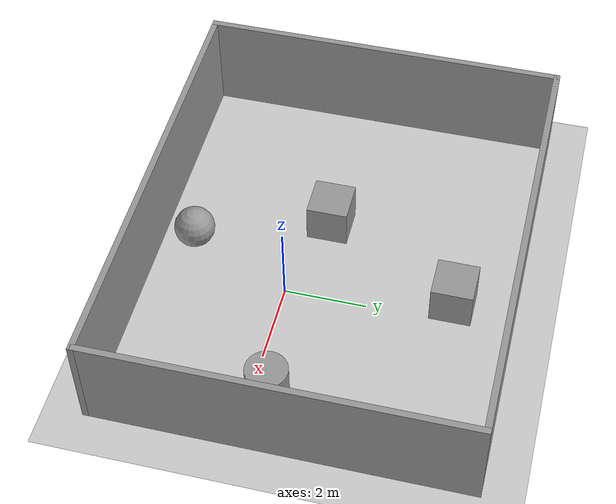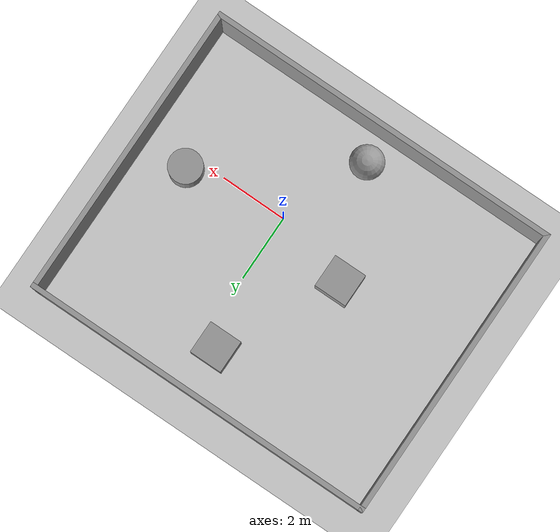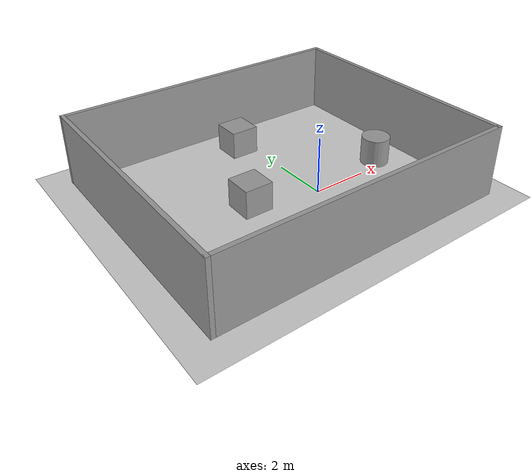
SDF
<sdf version="1.7">
 <world name="default">
  <light name="sun" type="directional">
   <pose>0 0 10 0 -0 0</pose>
   <diffuse>0.8 0.8 0.8 1</diffuse>
   <specular>0.2 0.2 0.2 1</specular>
   <attenuation>
    <range>1000</range>
    <constant>0.9</constant>
    <linear>0.01</linear>
    <quadratic>0.001</quadratic>
   </attenuation>
   <direction>-0.5 0.1 -0.9</direction>
   <spot><inner_angle>0</inner_angle><outer_angle>0</outer_angle><falloff>0</falloff></spot>
  </light>
  <model name="ground_plane">
   <static>1</static>
   <link name="link">
    <collision name="collision">
     <geometry><plane><normal>0 0 1</normal><size>100 100</size></plane></geometry>
     <surface>
      <contact><collide_bitmask>65535</collide_bitmask></contact>
      <friction><ode><mu>100</mu><mu2>50</mu2></ode></friction>
     </surface>
    </collision>
    <visual name="visual">
     <cast_shadows>0</cast_shadows>
     <geometry><plane><normal>0 0 1</normal><size>100 100</size></plane></geometry>
     <material>
      <script><uri>file://media/materials/scripts/gazebo.material</uri><name>Gazebo/Grey</name></script>
     </material>
    </visual>
   </link>
  </model>
  <gravity>0 0 -9.8</gravity>
  <magnetic_field>6e-06 2.3e-05 -4.2e-05</magnetic_field>
  <atmosphere type="adiabatic"/>
  <physics type="ode">
   <max_step_size>0.001</max_step_size>
   <real_time_factor>1</real_time_factor>
   <real_time_update_rate>1000</real_time_update_rate>
  </physics>
  <scene><ambient>0.4 0.4 0.4 1</ambient><background>0.7 0.7 0.7 1</background><shadows>1</shadows></scene>
  <spherical_coordinates>
   <surface_model>EARTH_WGS84</surface_model>
   <latitude_deg>0</latitude_deg>
   <longitude_deg>0</longitude_deg>
   <elevation>0</elevation>
   <heading_deg>0</heading_deg>
  </spherical_coordinates>
  <model name="unit_box">
   <pose>-2.28065 0.601965 0.499995 -1e-05 -0 -0</pose>
   <link name="link">
    <inertial>
     <mass>1</mass>
     <inertia>
      <ixx>0.166667</ixx>
      <ixy>0</ixy>
      <ixz>0</ixz>
      <iyy>0.166667</iyy>
      <iyz>0</iyz>
      <izz>0.166667</izz>
     </inertia>
    </inertial>
    <collision name="collision"><geometry><box><size>1 1 1</size></box></geometry></collision>
    <visual name="visual">
     <geometry><box><size>1 1 1</size></box></geometry>
     <material>
      <script><name>Gazebo/Grey</name><uri>file://media/materials/scripts/gazebo.material</uri></script>
     </material>
    </visual>
   </link>
  </model>
  <model name="unit_box_0">
   <pose>-0.491582 4.00562 0.499995 0 -1e-05 0</pose>
   <link name="link">
    <inertial>
     <mass>1</mass>
     <inertia>
      <ixx>0.166667</ixx>
      <ixy>0</ixy>
      <ixz>0</ixz>
      <iyy>0.166667</iyy>
      <iyz>0</iyz>
      <izz>0.166667</izz>
     </inertia>
    </inertial>
    <collision name="collision"><geometry><box><size>1 1 1</size></box></geometry></collision>
    <visual name="visual">
     <geometry><box><size>1 1 1</size></box></geometry>
     <material>
      <script><name>Gazebo/Grey</name><uri>file://media/materials/scripts/gazebo.material</uri></script>
     </material>
    </visual>
   </link>
  </model>
  <model name="unit_sphere">
   <pose>-1.04911 -2.53946 0.5 0 -0 0</pose>
   <link name="link">
    <inertial>
     <mass>1</mass>
     <inertia><ixx>0.1</ixx><ixy>0</ixy><ixz>0</ixz><iyy>0.1</iyy><iyz>0</iyz><izz>0.1</izz></inertia>
    </inertial>
    <collision name="collision"><geometry><sphere><radius>0.5</radius></sphere></geometry></collision>
    <visual name="visual">
     <geometry><sphere><radius>0.5</radius></sphere></geometry>
     <material>
      <script><name>Gazebo/Grey</name><uri>file://media/materials/scripts/gazebo.material</uri></script>
     </material>
    </visual>
   </link>
  </model>
  <model name="unit_cylinder">
   <pose>2.97552 0.390197 0.499997 3e-06 4e-06 -0</pose>
   <link name="link">
    <inertial>
     <mass>1</mass>
     <inertia><ixx>0.145833</ixx><ixy>0</ixy><ixz>0</ixz><iyy>0.145833</iyy><iyz>0</iyz><izz>0.125</izz></inertia>
    </inertial>
    <collision name="collision">
     <geometry><cylinder><radius>0.5</radius><length>1</length></cylinder></geometry>
    </collision>
    <visual name="visual">
     <geometry><cylinder><radius>0.5</radius><length>1</length></cylinder></geometry>
     <material>
      <script><name>Gazebo/Grey</name><uri>file://media/materials/scripts/gazebo.material</uri></script>
     </material>
    </visual>
   </link>
  </model>
  <model name="mapa">
   <pose>-0.922725 1.00696 0 0 -0 0</pose>
   <link name="Wall_11">
    <collision name="Wall_11_Collision">
     <geometry><box><size>10.75 0.15 2.5</size></box></geometry>
     <pose>0 0 1.25 0 -0 0</pose>
    </collision>
    <visual name="Wall_11_Visual">
     <pose>0 0 1.25 0 -0 0</pose>
     <geometry><box><size>10.75 0.15 2.5</size></box></geometry>
     <material>
      <script><uri>file://media/materials/scripts/gazebo.material</uri><name>Gazebo/Grey</name></script>
      <ambient>1 1 1 1</ambient>
     </material>
     <meta><layer>0</layer></meta>
    </visual>
    <pose>-0 4.425 0 0 -0 0</pose>
   </link>
   <link name="Wall_12">
    <collision name="Wall_12_Collision">
     <geometry><box><size>9 0.15 2.5</size></box></geometry>
     <pose>0 0 1.25 0 -0 0</pose>
    </collision>
    <visual name="Wall_12_Visual">
     <pose>0 0 1.25 0 -0 0</pose>
     <geometry><box><size>9 0.15 2.5</size></box></geometry>
     <material>
      <script><uri>file://media/materials/scripts/gazebo.material</uri><name>Gazebo/Grey</name></script>
      <ambient>1 1 1 1</ambient>
     </material>
     <meta><layer>0</layer></meta>
    </visual>
    <pose>5.3 -0 0 0 -0 -1.5708</pose>
   </link>
   <link name="Wall_14">
    <collision name="Wall_14_Collision">
     <geometry><box><size>10.75 0.15 2.5</size></box></geometry>
     <pose>0 0 1.25 0 -0 0</pose>
    </collision>
    <visual name="Wall_14_Visual">
     <pose>0 0 1.25 0 -0 0</pose>
     <geometry><box><size>10.75 0.15 2.5</size></box></geometry>
     <material>
      <script><uri>file://media/materials/scripts/gazebo.material</uri><name>Gazebo/Grey</name></script>
      <ambient>1 1 1 1</ambient>
     </material>
     <meta><layer>0</layer></meta>
    </visual>
    <pose>-0 -4.425 0 0 -0 3.14159</pose>
   </link>
   <link name="Wall_16">
    <collision name="Wall_16_Collision">
     <geometry><box><size>9 0.15 2.5</size></box></geometry>
     <pose>0 0 1.25 0 -0 0</pose>
    </collision>
    <visual name="Wall_16_Visual">
     <pose>0 0 1.25 0 -0 0</pose>
     <geometry><box><size>9 0.15 2.5</size></box></geometry>
     <material>
      <script><uri>file://media/materials/scripts/gazebo.material</uri><name>Gazebo/Grey</name></script>
      <ambient>1 1 1 1</ambient>
     </material>
     <meta><layer>0</layer></meta>
    </visual>
    <pose>-5.3 -0 0 0 -0 -1.5708</pose>
   </link>
   <static>1</static>
  </model>
 </world>
</sdf>
